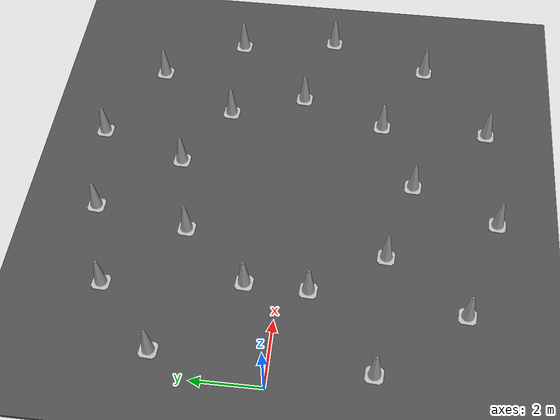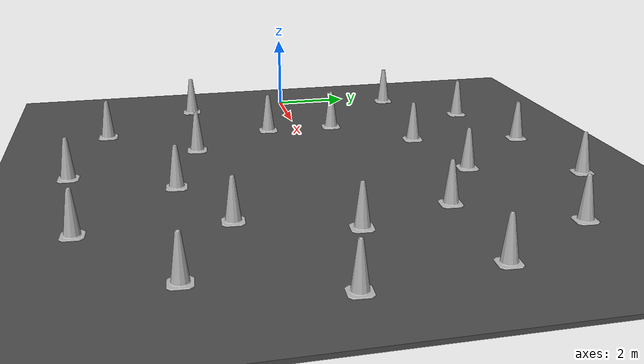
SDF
<sdf version="1.7">
 <world name="default">
  <model name="ground_plane">
   <static>1</static>
   <link name="link">
    <collision name="collision">
     <geometry><plane><normal>0 0 1</normal><size>100 100</size></plane></geometry>
     <surface><friction><ode><mu>100</mu><mu2>50</mu2></ode></friction></surface>
    </collision>
    <visual name="visual">
     <cast_shadows>0</cast_shadows>
     <geometry><plane><normal>0 0 1</normal><size>100 100</size></plane></geometry>
     <material>
      <script><uri>file://media/materials/scripts/gazebo.material</uri><name>Gazebo/Grey</name></script>
     </material>
    </visual>
    <velocity_decay><linear>0</linear><angular>0</angular></velocity_decay>
   </link>
  </model>
  <model name="big_asphalt_plane">
   <static>1</static>
   <link name="link">
    <collision name="collision"><geometry><box><size>50 50 0.1</size></box></geometry></collision>
    <visual name="visual">
     <cast_shadows>0</cast_shadows>
     <geometry><box><size>50 50 0.1</size></box></geometry>
     <material>
      <script>
       <uri>model://big_asphalt_plane/materials/scripts</uri>
       <uri>model://big_asphalt_plane/materials/textures</uri>
       <name>vrc/asphalt</name>
      </script>
     </material>
    </visual>
   </link>
   <pose>0.553604 0.161213 0 0 -0 0</pose>
  </model>
  <model name="Construction Cone_0_clone_0_clone_clone_5_clone_5">
   <link name="link">
    <collision name="collision">
     <geometry>
      <mesh><scale>10 10 10</scale><uri>model://construction_cone/meshes/construction_cone.dae</uri></mesh>
     </geometry>
    </collision>
    <visual name="visual">
     <geometry>
      <mesh><scale>10 10 10</scale><uri>model://construction_cone/meshes/construction_cone.dae</uri></mesh>
     </geometry>
    </visual>
    <velocity_decay><linear>0</linear><angular>0</angular></velocity_decay>
    <inertial>
     <inertia><ixx>1</ixx><ixy>0</ixy><ixz>0</ixz><iyy>1</iyy><iyz>0</iyz><izz>1</izz></inertia>
     <mass>1</mass>
    </inertial>
   </link>
   <pose>10.1314 0.010158 0 0 0 -0.059721</pose>
   <static>0</static>
  </model>
  <model name="Construction Cone_0_clone_0_clone_clone_5_clone_6">
   <link name="link">
    <collision name="collision">
     <geometry>
      <mesh><scale>10 10 10</scale><uri>model://construction_cone/meshes/construction_cone.dae</uri></mesh>
     </geometry>
    </collision>
    <visual name="visual">
     <geometry>
      <mesh><scale>10 10 10</scale><uri>model://construction_cone/meshes/construction_cone.dae</uri></mesh>
     </geometry>
    </visual>
    <velocity_decay><linear>0</linear><angular>0</angular></velocity_decay>
    <inertial>
     <inertia><ixx>1</ixx><ixy>0</ixy><ixz>0</ixz><iyy>1</iyy><iyz>0</iyz><izz>1</izz></inertia>
     <mass>1</mass>
    </inertial>
   </link>
   <pose>9.22107 -2.5562 0 0 0 -0.059721</pose>
   <static>0</static>
  </model>
  <model name="Construction Cone_0_clone_0_clone_clone_5_clone_7">
   <link name="link">
    <collision name="collision">
     <geometry>
      <mesh><scale>10 10 10</scale><uri>model://construction_cone/meshes/construction_cone.dae</uri></mesh>
     </geometry>
    </collision>
    <visual name="visual">
     <geometry>
      <mesh><scale>10 10 10</scale><uri>model://construction_cone/meshes/construction_cone.dae</uri></mesh>
     </geometry>
    </visual>
    <velocity_decay><linear>0</linear><angular>0</angular></velocity_decay>
    <inertial>
     <inertia><ixx>1</ixx><ixy>0</ixy><ixz>0</ixz><iyy>1</iyy><iyz>0</iyz><izz>1</izz></inertia>
     <mass>1</mass>
    </inertial>
   </link>
   <pose>6.94898 -3.61706 0 0 0 -0.059721</pose>
   <static>0</static>
  </model>
  <model name="Construction Cone_0_clone_0_clone_clone_5_clone_8">
   <link name="link">
    <collision name="collision">
     <geometry>
      <mesh><scale>10 10 10</scale><uri>model://construction_cone/meshes/construction_cone.dae</uri></mesh>
     </geometry>
    </collision>
    <visual name="visual">
     <geometry>
      <mesh><scale>10 10 10</scale><uri>model://construction_cone/meshes/construction_cone.dae</uri></mesh>
     </geometry>
    </visual>
    <velocity_decay><linear>0</linear><angular>0</angular></velocity_decay>
    <inertial>
     <inertia><ixx>1</ixx><ixy>0</ixy><ixz>0</ixz><iyy>1</iyy><iyz>0</iyz><izz>1</izz></inertia>
     <mass>1</mass>
    </inertial>
   </link>
   <pose>4.35383 -2.95022 0 0 0 -0.059721</pose>
   <static>0</static>
  </model>
  <model name="Construction Cone_0_clone_0_clone_clone_5_clone_9">
   <link name="link">
    <collision name="collision">
     <geometry>
      <mesh><scale>10 10 10</scale><uri>model://construction_cone/meshes/construction_cone.dae</uri></mesh>
     </geometry>
    </collision>
    <visual name="visual">
     <geometry>
      <mesh><scale>10 10 10</scale><uri>model://construction_cone/meshes/construction_cone.dae</uri></mesh>
     </geometry>
    </visual>
    <velocity_decay><linear>0</linear><angular>0</angular></velocity_decay>
    <inertial>
     <inertia><ixx>1</ixx><ixy>0</ixy><ixz>0</ixz><iyy>1</iyy><iyz>0</iyz><izz>1</izz></inertia>
     <mass>1</mass>
    </inertial>
   </link>
   <pose>9.30471 2.27137 0 0 0 -0.059721</pose>
   <static>0</static>
  </model>
  <model name="Construction Cone_0_clone_0_clone_clone_5_clone_10">
   <link name="link">
    <collision name="collision">
     <geometry>
      <mesh><scale>10 10 10</scale><uri>model://construction_cone/meshes/construction_cone.dae</uri></mesh>
     </geometry>
    </collision>
    <visual name="visual">
     <geometry>
      <mesh><scale>10 10 10</scale><uri>model://construction_cone/meshes/construction_cone.dae</uri></mesh>
     </geometry>
    </visual>
    <velocity_decay><linear>0</linear><angular>0</angular></velocity_decay>
    <inertial>
     <inertia><ixx>1</ixx><ixy>0</ixy><ixz>0</ixz><iyy>1</iyy><iyz>0</iyz><izz>1</izz></inertia>
     <mass>1</mass>
    </inertial>
   </link>
   <pose>7.20216 3.5022 0 0 0 -0.059721</pose>
   <static>0</static>
  </model>
  <model name="Construction Cone_0_clone_0_clone_clone_5_clone_11">
   <link name="link">
    <collision name="collision">
     <geometry>
      <mesh><scale>10 10 10</scale><uri>model://construction_cone/meshes/construction_cone.dae</uri></mesh>
     </geometry>
    </collision>
    <visual name="visual">
     <geometry>
      <mesh><scale>10 10 10</scale><uri>model://construction_cone/meshes/construction_cone.dae</uri></mesh>
     </geometry>
    </visual>
    <velocity_decay><linear>0</linear><angular>0</angular></velocity_decay>
    <inertial>
     <inertia><ixx>1</ixx><ixy>0</ixy><ixz>0</ixz><iyy>1</iyy><iyz>0</iyz><izz>1</izz></inertia>
     <mass>1</mass>
    </inertial>
   </link>
   <pose>4.70174 2.89906 0 0 0 -0.059721</pose>
   <static>0</static>
  </model>
  <model name="Construction Cone_0_clone_0_clone_clone_5_clone_15">
   <link name="link">
    <collision name="collision">
     <geometry>
      <mesh><scale>10 10 10</scale><uri>model://construction_cone/meshes/construction_cone.dae</uri></mesh>
     </geometry>
    </collision>
    <visual name="visual">
     <geometry>
      <mesh><scale>10 10 10</scale><uri>model://construction_cone/meshes/construction_cone.dae</uri></mesh>
     </geometry>
    </visual>
    <velocity_decay><linear>0</linear><angular>0</angular></velocity_decay>
    <inertial>
     <inertia><ixx>1</ixx><ixy>0</ixy><ixz>0</ixz><iyy>1</iyy><iyz>0</iyz><izz>1</izz></inertia>
     <mass>1</mass>
    </inertial>
   </link>
   <pose>3.06944 0.963183 0 0 0 -0.059721</pose>
   <static>0</static>
  </model>
  <model name="Construction Cone_0_clone_0_clone_clone_5_clone_12">
   <link name="link">
    <collision name="collision">
     <geometry>
      <mesh><scale>10 10 10</scale><uri>model://construction_cone/meshes/construction_cone.dae</uri></mesh>
     </geometry>
    </collision>
    <visual name="visual">
     <geometry>
      <mesh><scale>10 10 10</scale><uri>model://construction_cone/meshes/construction_cone.dae</uri></mesh>
     </geometry>
    </visual>
    <velocity_decay><linear>0</linear><angular>0</angular></velocity_decay>
    <inertial>
     <inertia><ixx>1</ixx><ixy>0</ixy><ixz>0</ixz><iyy>1</iyy><iyz>0</iyz><izz>1</izz></inertia>
     <mass>1</mass>
    </inertial>
   </link>
   <pose>3.01985 -0.851082 0 0 0 -0.059721</pose>
   <static>0</static>
  </model>
  <model name="Construction Cone_0_clone_0_clone_clone_5_clone_16">
   <link name="link">
    <collision name="collision">
     <geometry>
      <mesh><scale>10 10 10</scale><uri>model://construction_cone/meshes/construction_cone.dae</uri></mesh>
     </geometry>
    </collision>
    <visual name="visual">
     <geometry>
      <mesh><scale>10 10 10</scale><uri>model://construction_cone/meshes/construction_cone.dae</uri></mesh>
     </geometry>
    </visual>
    <velocity_decay><linear>0</linear><angular>0</angular></velocity_decay>
    <inertial>
     <inertia><ixx>1</ixx><ixy>0</ixy><ixz>0</ixz><iyy>1</iyy><iyz>0</iyz><izz>1</izz></inertia>
     <mass>1</mass>
    </inertial>
   </link>
   <pose>2.65051 4.96187 0 0 0 -0.059721</pose>
   <static>0</static>
  </model>
  <model name="Construction Cone_0_clone_0_clone_clone_5_clone_17">
   <link name="link">
    <collision name="collision">
     <geometry>
      <mesh><scale>10 10 10</scale><uri>model://construction_cone/meshes/construction_cone.dae</uri></mesh>
     </geometry>
    </collision>
    <visual name="visual">
     <geometry>
      <mesh><scale>10 10 10</scale><uri>model://construction_cone/meshes/construction_cone.dae</uri></mesh>
     </geometry>
    </visual>
    <velocity_decay><linear>0</linear><angular>0</angular></velocity_decay>
    <inertial>
     <inertia><ixx>1</ixx><ixy>0</ixy><ixz>0</ixz><iyy>1</iyy><iyz>0</iyz><izz>1</izz></inertia>
     <mass>1</mass>
    </inertial>
   </link>
   <pose>5.23641 5.71917 0 0 0 -0.059721</pose>
   <static>0</static>
  </model>
  <model name="Construction Cone_0_clone_0_clone_clone_5_clone_18">
   <link name="link">
    <collision name="collision">
     <geometry>
      <mesh><scale>10 10 10</scale><uri>model://construction_cone/meshes/construction_cone.dae</uri></mesh>
     </geometry>
    </collision>
    <visual name="visual">
     <geometry>
      <mesh><scale>10 10 10</scale><uri>model://construction_cone/meshes/construction_cone.dae</uri></mesh>
     </geometry>
    </visual>
    <velocity_decay><linear>0</linear><angular>0</angular></velocity_decay>
    <inertial>
     <inertia><ixx>1</ixx><ixy>0</ixy><ixz>0</ixz><iyy>1</iyy><iyz>0</iyz><izz>1</izz></inertia>
     <mass>1</mass>
    </inertial>
   </link>
   <pose>8.1205 6.1281 0 0 0 -0.059721</pose>
   <static>0</static>
  </model>
  <model name="Construction Cone_0_clone_0_clone_clone_5_clone_19">
   <link name="link">
    <collision name="collision">
     <geometry>
      <mesh><scale>10 10 10</scale><uri>model://construction_cone/meshes/construction_cone.dae</uri></mesh>
     </geometry>
    </collision>
    <visual name="visual">
     <geometry>
      <mesh><scale>10 10 10</scale><uri>model://construction_cone/meshes/construction_cone.dae</uri></mesh>
     </geometry>
    </visual>
    <velocity_decay><linear>0</linear><angular>0</angular></velocity_decay>
    <inertial>
     <inertia><ixx>1</ixx><ixy>0</ixy><ixz>0</ixz><iyy>1</iyy><iyz>0</iyz><izz>1</izz></inertia>
     <mass>1</mass>
    </inertial>
   </link>
   <pose>10.7933 4.72446 0 0 0 -0.059721</pose>
   <static>0</static>
  </model>
  <model name="Construction Cone_0_clone_0_clone_clone_5_clone_20">
   <link name="link">
    <collision name="collision">
     <geometry>
      <mesh><scale>10 10 10</scale><uri>model://construction_cone/meshes/construction_cone.dae</uri></mesh>
     </geometry>
    </collision>
    <visual name="visual">
     <geometry>
      <mesh><scale>10 10 10</scale><uri>model://construction_cone/meshes/construction_cone.dae</uri></mesh>
     </geometry>
    </visual>
    <velocity_decay><linear>0</linear><angular>0</angular></velocity_decay>
    <inertial>
     <inertia><ixx>1</ixx><ixy>0</ixy><ixz>0</ixz><iyy>1</iyy><iyz>0</iyz><izz>1</izz></inertia>
     <mass>1</mass>
    </inertial>
   </link>
   <pose>12.3057 2.29845 0 0 0 -0.059721</pose>
   <static>0</static>
  </model>
  <model name="Construction Cone_0_clone_0_clone_clone_5_clone_21">
   <link name="link">
    <collision name="collision">
     <geometry>
      <mesh><scale>10 10 10</scale><uri>model://construction_cone/meshes/construction_cone.dae</uri></mesh>
     </geometry>
    </collision>
    <visual name="visual">
     <geometry>
      <mesh><scale>10 10 10</scale><uri>model://construction_cone/meshes/construction_cone.dae</uri></mesh>
     </geometry>
    </visual>
    <velocity_decay><linear>0</linear><angular>0</angular></velocity_decay>
    <inertial>
     <inertia><ixx>1</ixx><ixy>0</ixy><ixz>0</ixz><iyy>1</iyy><iyz>0</iyz><izz>1</izz></inertia>
     <mass>1</mass>
    </inertial>
   </link>
   <pose>12.775 -0.734793 0 0 0 -0.059721</pose>
   <static>0</static>
  </model>
  <model name="Construction Cone_0_clone_0_clone_clone_5_clone_22">
   <link name="link">
    <collision name="collision">
     <geometry>
      <mesh><scale>10 10 10</scale><uri>model://construction_cone/meshes/construction_cone.dae</uri></mesh>
     </geometry>
    </collision>
    <visual name="visual">
     <geometry>
      <mesh><scale>10 10 10</scale><uri>model://construction_cone/meshes/construction_cone.dae</uri></mesh>
     </geometry>
    </visual>
    <velocity_decay><linear>0</linear><angular>0</angular></velocity_decay>
    <inertial>
     <inertia><ixx>1</ixx><ixy>0</ixy><ixz>0</ixz><iyy>1</iyy><iyz>0</iyz><izz>1</izz></inertia>
     <mass>1</mass>
    </inertial>
   </link>
   <pose>11.7518 -3.79609 0 0 0 -0.059721</pose>
   <static>0</static>
  </model>
  <model name="Construction Cone_0_clone_0_clone_clone_5_clone_23">
   <link name="link">
    <collision name="collision">
     <geometry>
      <mesh><scale>10 10 10</scale><uri>model://construction_cone/meshes/construction_cone.dae</uri></mesh>
     </geometry>
    </collision>
    <visual name="visual">
     <geometry>
      <mesh><scale>10 10 10</scale><uri>model://construction_cone/meshes/construction_cone.dae</uri></mesh>
     </geometry>
    </visual>
    <velocity_decay><linear>0</linear><angular>0</angular></velocity_decay>
    <inertial>
     <inertia><ixx>1</ixx><ixy>0</ixy><ixz>0</ixz><iyy>1</iyy><iyz>0</iyz><izz>1</izz></inertia>
     <mass>1</mass>
    </inertial>
   </link>
   <pose>9.22906 -5.82097 0 0 0 -0.059721</pose>
   <static>0</static>
  </model>
  <model name="Construction Cone_0_clone_0_clone_clone_5_clone_24">
   <link name="link">
    <collision name="collision">
     <geometry>
      <mesh><scale>10 10 10</scale><uri>model://construction_cone/meshes/construction_cone.dae</uri></mesh>
     </geometry>
    </collision>
    <visual name="visual">
     <geometry>
      <mesh><scale>10 10 10</scale><uri>model://construction_cone/meshes/construction_cone.dae</uri></mesh>
     </geometry>
    </visual>
    <velocity_decay><linear>0</linear><angular>0</angular></velocity_decay>
    <inertial>
     <inertia><ixx>1</ixx><ixy>0</ixy><ixz>0</ixz><iyy>1</iyy><iyz>0</iyz><izz>1</izz></inertia>
     <mass>1</mass>
    </inertial>
   </link>
   <pose>5.83089 -6.12855 0 0 0 -0.059721</pose>
   <static>0</static>
  </model>
  <model name="Construction Cone_0_clone_0_clone_clone_5_clone_25">
   <link name="link">
    <collision name="collision">
     <geometry>
      <mesh><scale>10 10 10</scale><uri>model://construction_cone/meshes/construction_cone.dae</uri></mesh>
     </geometry>
    </collision>
    <visual name="visual">
     <geometry>
      <mesh><scale>10 10 10</scale><uri>model://construction_cone/meshes/construction_cone.dae</uri></mesh>
     </geometry>
    </visual>
    <velocity_decay><linear>0</linear><angular>0</angular></velocity_decay>
    <inertial>
     <inertia><ixx>1</ixx><ixy>0</ixy><ixz>0</ixz><iyy>1</iyy><iyz>0</iyz><izz>1</izz></inertia>
     <mass>1</mass>
    </inertial>
   </link>
   <pose>2.69028 -5.27062 0 0 0 -0.059721</pose>
   <static>0</static>
  </model>
  <model name="Construction Cone_0_clone_0_clone_clone_5_clone_26">
   <link name="link">
    <collision name="collision">
     <geometry>
      <mesh><scale>10 10 10</scale><uri>model://construction_cone/meshes/construction_cone.dae</uri></mesh>
     </geometry>
    </collision>
    <visual name="visual">
     <geometry>
      <mesh><scale>10 10 10</scale><uri>model://construction_cone/meshes/construction_cone.dae</uri></mesh>
     </geometry>
    </visual>
    <velocity_decay><linear>0</linear><angular>0</angular></velocity_decay>
    <inertial>
     <inertia><ixx>1</ixx><ixy>0</ixy><ixz>0</ixz><iyy>1</iyy><iyz>0</iyz><izz>1</izz></inertia>
     <mass>1</mass>
    </inertial>
   </link>
   <pose>0.670369 -2.83961 0 0 0 -0.059721</pose>
   <static>0</static>
  </model>
  <model name="Construction Cone_0_clone_0_clone_clone_5_clone_39">
   <link name="link">
    <collision name="collision">
     <geometry>
      <mesh><scale>10 10 10</scale><uri>model://construction_cone/meshes/construction_cone.dae</uri></mesh>
     </geometry>
    </collision>
    <visual name="visual">
     <geometry>
      <mesh><scale>10 10 10</scale><uri>model://construction_cone/meshes/construction_cone.dae</uri></mesh>
     </geometry>
    </visual>
    <velocity_decay><linear>0</linear><angular>0</angular></velocity_decay>
    <inertial>
     <inertia><ixx>1</ixx><ixy>0</ixy><ixz>0</ixz><iyy>1</iyy><iyz>0</iyz><izz>1</izz></inertia>
     <mass>1</mass>
    </inertial>
   </link>
   <pose>0.730086 3.21342 0 0 0 -0.059721</pose>
   <static>0</static>
  </model>
 </world>
</sdf>
